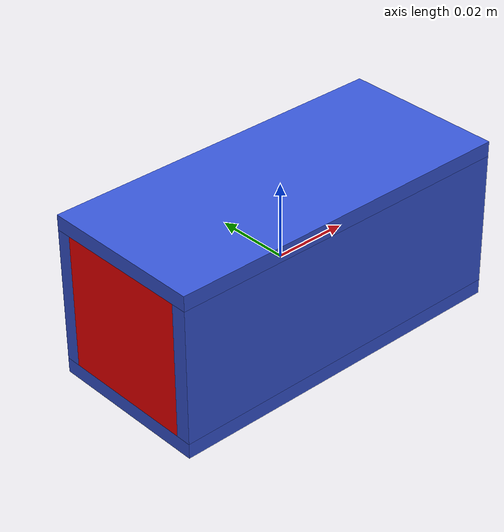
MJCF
<mujoco model="socket">
  <asset>
    <material name="socket_blue"  rgba="0.22 0.34 0.85 1"/>
    <material name="socket_red"   rgba="1 0 0 1"/>
  </asset>

  <default>
    <default class="stiff">
      <geom solref="0.005 1"/>
    </default>
  </default>

  <worldbody>
    <body name="socket">
      <site name="socket_entrance" pos="0.048 0 0" group="4"/>
      <site name="socket_rear"     pos="0     0 0" group="4"/>
      <joint name="socket" type="free" stiffness="0" damping="0" frictionloss="0" armature="0"/>

      <!-- Bottom wall -->
      <geom class="stiff" name="socket-B"
            type="box" size="0.048 0.022 0.002" pos="0 0 -0.02"
            mass="0.016" condim="4" friction="1 0.05 0.001"
            contype="1" conaffinity="1" group="3"/>
      <geom name="socket-B-vis"
            type="box" size="0.048 0.022 0.002" pos="0 0 -0.02"
            material="socket_blue"
            contype="0" conaffinity="0" group="0"/>

      <!-- Top wall (flipped normal via zaxis) -->
      <geom class="stiff" name="socket-T"
            type="box" size="0.048 0.022 0.002" pos="0 0 0.02" zaxis="0 0 -1"
            mass="0.016" condim="4" friction="1 0.05 0.001"
            contype="1" conaffinity="1" group="3"/>
      <geom name="socket-T-vis"
            type="box" size="0.048 0.022 0.002" pos="0 0 0.02" zaxis="0 0 -1"
            material="socket_blue"
            contype="0" conaffinity="0" group="0"/>

      <!-- Left side wall -->
      <geom class="stiff" name="socket-L"
            type="box" size="0.048 0.018 0.002" pos="0 -0.02 0" zaxis="0 1 0"
            mass="0.016" condim="4" friction="1 0.05 0.001"
            contype="1" conaffinity="1" group="3"/>
      <geom name="socket-L-vis"
            type="box" size="0.048 0.018 0.002" pos="0 -0.02 0" zaxis="0 1 0"
            material="socket_blue"
            contype="0" conaffinity="0" group="0"/>

      <!-- Right side wall -->
      <geom class="stiff" name="socket-R"
            type="box" size="0.048 0.018 0.002" pos="0 0.02 0" zaxis="0 -1 0"
            mass="0.016" condim="4" friction="1 0.05 0.001"
            contype="1" conaffinity="1" group="3"/>
      <geom name="socket-R-vis"
            type="box" size="0.048 0.018 0.002" pos="0 0.02 0" zaxis="0 -1 0"
            material="socket_blue"
            contype="0" conaffinity="0" group="0"/>

      <!-- Back wall (the target for peg_end2 to reach) -->
      <geom class="stiff" name="wall"
            type="box" size="0.004 0.018 0.018" pos="-0.044 0 0"
            mass="0.006" condim="4" friction="1 0.05 0.001"
            contype="1" conaffinity="1" group="3"/>
      <geom name="wall-vis"
            type="box" size="0.004 0.018 0.018" pos="-0.044 0 0"
            material="socket_red"
            contype="0" conaffinity="0" group="0"/>

      <!-- Dummy bodies acting as "site" proxies for Genesis. -->
      <body name="socket_entrance_site" pos="0.048 0 0">
        <inertial pos="0 0 0" mass="1e-6" diaginertia="1e-9 1e-9 1e-9"/>
      </body>
      <body name="socket_rear_site" pos="0 0 0">
        <inertial pos="0 0 0" mass="1e-6" diaginertia="1e-9 1e-9 1e-9"/>
      </body>
    </body>
  </worldbody>
</mujoco>
